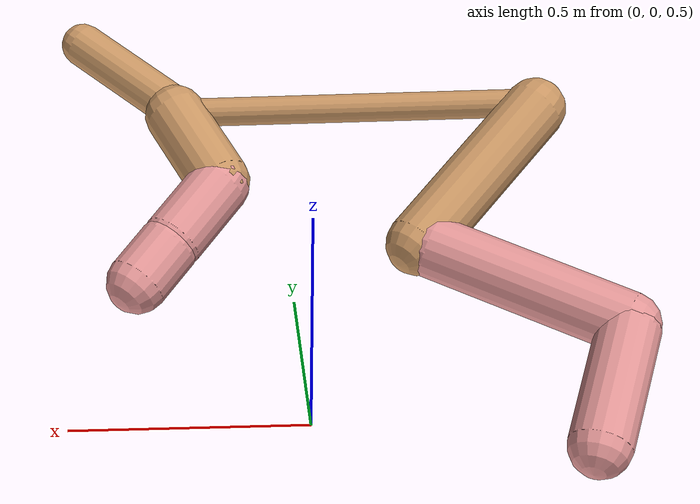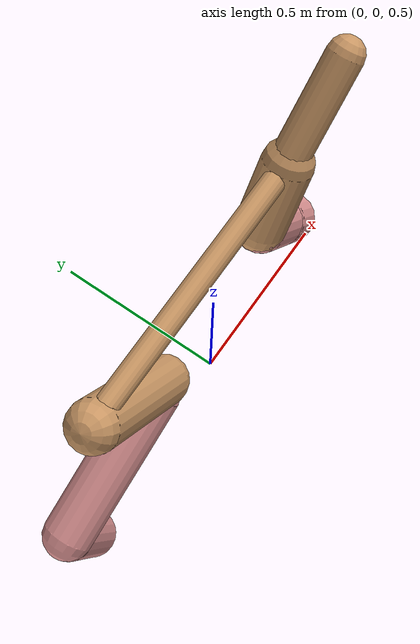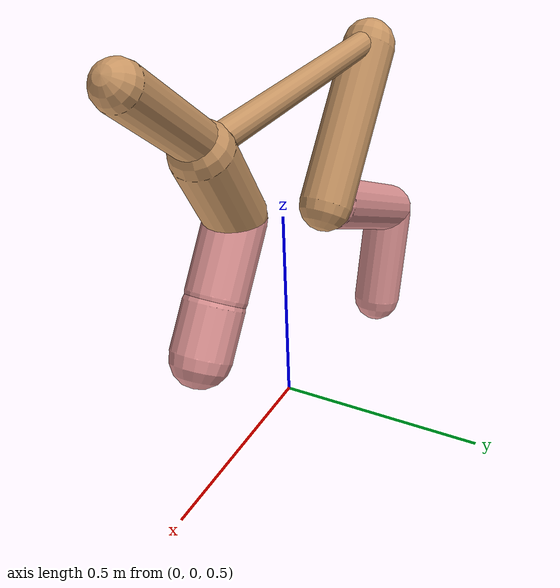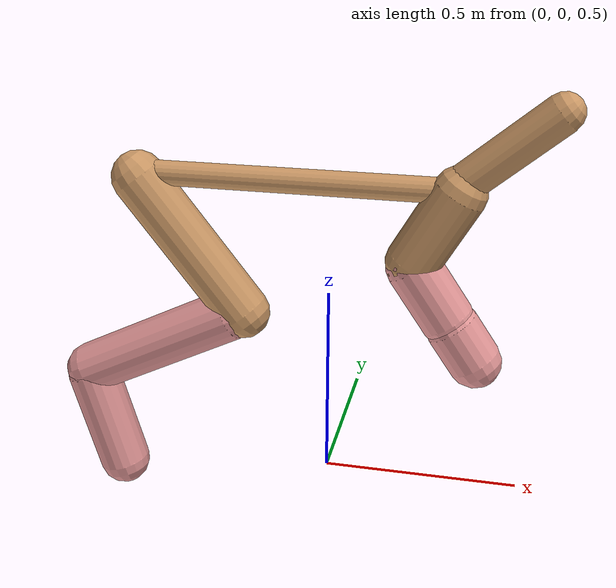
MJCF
<mujoco model="cheetah">
  <compiler angle="radian" coordinate="local" inertiafromgeom="true" settotalmass="14" />
  <default>
    <joint armature=".1" damping=".01" limited="true" solimplimit="0 .8 .03" solreflimit=".02 1" stiffness="8" />
    <geom conaffinity="0" condim="3" contype="1" friction="0.8 .1 .1" rgba="0.8 0.6 .4 1" solimp="0.0 0.8 0.01" solref="0.02 1" />
    <motor ctrllimited="true" ctrlrange="-1 1" />
  </default>
  <size nstack="300000" nuser_geom="1" />
  <option gravity="0 0 -9.81" timestep="0.01" />
  <worldbody>
    <body name="torso" pos="0.0 0.0 1.2865349684467389">
      <joint armature="0" axis="1 0 0" damping="0" limited="false" name="ignorex" pos="0 0 0" stiffness="0" type="slide" />
      <joint armature="0" axis="0 0 1" damping="0" limited="false" name="ignorez" pos="0 0 0" stiffness="0" type="slide" />
      <joint armature="0" axis="0 1 0" damping="0" limited="false" name="ignorey" pos="0 0 0" stiffness="0" type="hinge" />
      <geom fromto="-0.5 0.0 0.0 0.3131852114126463 0.0 0.0" name="torso" size="0.03125677598566038" type="capsule" />
      <geom axisangle="0 1 0 .87" name="head" pos="0.4131852114126463 0.0 0.1" size="0.04855681813445074 0.15" type="capsule" />

      <body name="bthigh" pos="-.5 0 0">
        <joint axis="0 1 0" damping="6" name="bthigh" pos="0 0 0" range="-.52 1.05" stiffness="240" type="hinge" />
        <geom axisangle="0 1 0 -3.8" name="bthigh" pos="0.14394442277297345 0.0 -0.1871277496048655" size="0.06849930228856692 0.21707421222438741" type="capsule" />
        <body name="bshin" pos="0.2478888455459469 0.0 -0.364255499209731">
          <joint axis="0 1 0" damping="4.5" name="bshin" pos="0 0 0" range="-.785 .785" stiffness="180" type="hinge" />
          <geom axisangle="0 1 0 -2.03" name="bshin" pos="-0.20668807087936963 0.0 -0.10334403543968482" rgba="0.9 0.6 0.6 1" size="0.06849930228856692 0.22455952988729735" type="capsule" />
          <body name="bfoot" pos="-0.41337614175873927 0.0 -0.20668807087936963">
            <joint axis="0 1 0" damping="3" name="bfoot" pos="0 0 0" range="-.4 .785" stiffness="120" type="hinge" />
            <geom axisangle="0 1 0 -.27" name="bfoot" pos="0.04380551907918627 0.0 -0.14163784502270227" rgba="0.9 0.6 0.6 1" size="0.06849930228856692 0.14072397206270634" type="capsule" />
            <inertial mass="10" />
          </body>
        </body>
      </body>
      <body name="fthigh" pos="0.3131852114126463 0.0 0.0">
        <joint axis="0 1 0" damping="4.5" name="fthigh" pos="0 0 0" range="-1.5 0.8" stiffness="180" type="hinge" />
        <geom axisangle="0 1 0 .52" name="fthigh" pos="-0.055679216956521775 0.0 -0.09545008621118017" size="0.06766010264444382 0.1045784748119166" type="capsule" />
        <body name="fshin" pos="-0.11135843391304355 0.0 -0.19090017242236035">
          <joint axis="0 1 0" damping="3" name="fshin" pos="0 0 0" range="-1.2 1.1" stiffness="120" type="hinge" />
          <geom axisangle="0 1 0 -.6" name="fshin" pos="0.051737619101593475 0.0 -0.07163670337143711" rgba="0.9 0.6 0.6 1" size="0.06766010264444382 0.08334825812077562" type="capsule" />
          <body name="ffoot" pos="0.10347523820318695 0.0 -0.14327340674287423">
            <joint axis="0 1 0" damping="1.5" name="ffoot" pos="0 0 0" range="-3.1 -0.3" stiffness="60" type="hinge" />
            <geom axisangle="0 1 0 -.6" name="ffoot" pos="0.03691097078833478 0.0 -0.057417065670743" rgba="0.9 0.6 0.6 1" size="0.06766010264444382 0.05504130253258768" type="capsule" />
            <inertial mass="10" />
          </body>
        </body>
      </body>
    </body>
  </worldbody>
  <actuator>
    <motor gear="120" joint="bthigh" name="bthigh" />
    <motor gear="90" joint="bshin" name="bshin" />
    <motor gear="60" joint="bfoot" name="bfoot" />
    <motor gear="120" joint="fthigh" name="fthigh" />
    <motor gear="60" joint="fshin" name="fshin" />
    <motor gear="30" joint="ffoot" name="ffoot" />
  </actuator>
</mujoco>
